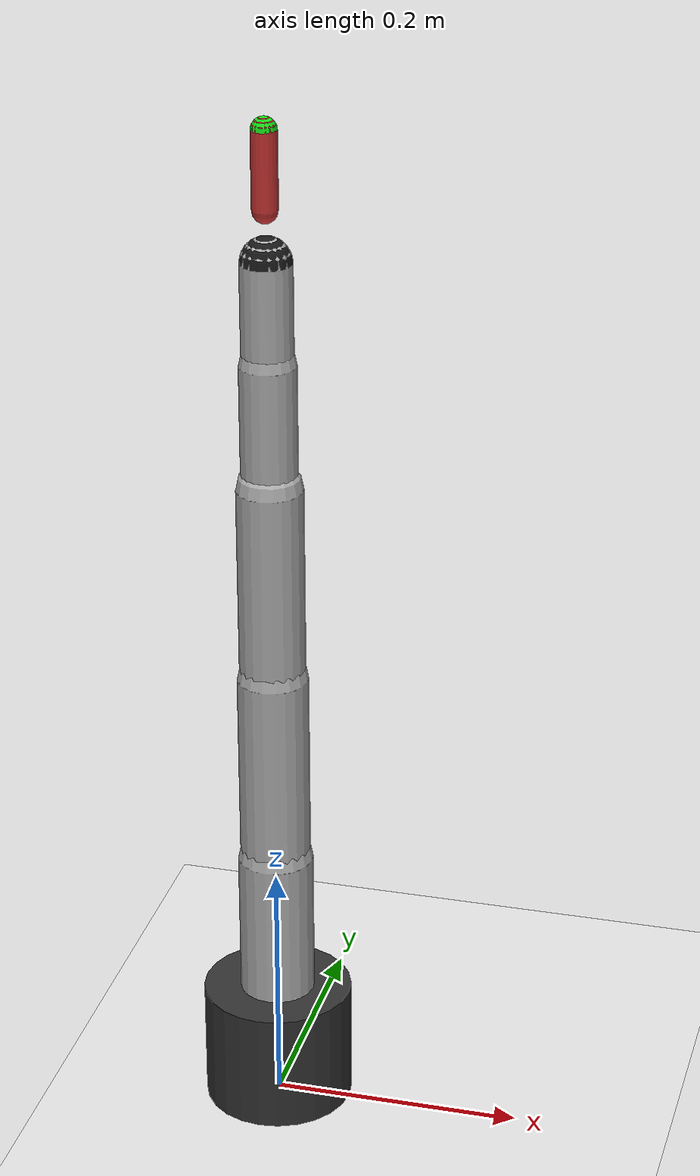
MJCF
<mujoco model="so101">
  <compiler angle="radian" coordinate="local" meshdir="" texturedir=""/>
  <option gravity="0 0 -9.81" timestep="0.002"/>

  <asset>
    <texture type="skybox" builtin="gradient" rgb1="0.9 0.9 1.0" rgb2="0.6 0.6 0.8" width="512" height="512"/>
    <material name="grey" rgba="0.7 0.7 0.7 1"/>
    <material name="black" rgba="0.2 0.2 0.2 1"/>
    <material name="red" rgba="0.8 0.2 0.2 1"/>
  </asset>

  <worldbody>
    <light pos="1 1 2" dir="-1 -1 -2" diffuse="1 1 1" specular="0.2 0.2 0.2"/>
    <geom type="plane" size="5 5 0.1" pos="0 0 0" rgba="0.9 0.9 0.9 1"/>

    <!-- Front camera -->
    <camera name="front_cam" pos="1.2 0.0 0.8" euler="0.0 0.6 3.1415"/>

    <!-- Base -->
    <body name="base" pos="0 0 0.05">
      <geom type="cylinder" size="0.06 0.05" rgba="0.2 0.2 0.2 1"/>

      <!-- Joint 1 (shoulder_pan) -->
      <body name="link1" pos="0 0 0.05">
        <joint name="shoulder_pan" type="hinge" axis="0 0 1" range="-3.14 3.14" damping="0.1"/>
        <geom type="capsule" fromto="0 0 0  0 0 0.12" size="0.03" material="grey"/>

        <!-- Joint 2 (shoulder_lift) -->
        <body name="link2" pos="0 0 0.12">
          <joint name="shoulder_lift" type="hinge" axis="0 1 0" range="-2.0 2.0" damping="0.1"/>
          <geom type="capsule" fromto="0 0 0  0 0 0.16" size="0.028" material="grey"/>

          <!-- Joint 3 (elbow_flex) -->
          <body name="link3" pos="0 0 0.16">
            <joint name="elbow_flex" type="hinge" axis="0 1 0" range="-2.0 2.0" damping="0.1"/>
            <geom type="capsule" fromto="0 0 0  0 0 0.16" size="0.026" material="grey"/>

            <!-- Joint 4 (wrist_flex) -->
            <body name="link4" pos="0 0 0.16">
              <joint name="wrist_flex" type="hinge" axis="0 1 0" range="-2.0 2.0" damping="0.05"/>
              <geom type="capsule" fromto="0 0 0  0 0 0.10" size="0.022" material="grey"/>

              <!-- Joint 5 (wrist_roll) -->
              <body name="link5" pos="0 0 0.10">
                <joint name="wrist_roll" type="hinge" axis="0 0 1" range="-3.14 3.14" damping="0.02"/>
                <geom type="capsule" fromto="0 0 0  0 0 0.08" size="0.02" material="grey"/>

                <!-- Gripper (single DOF approximation) -->
                <body name="gripper_base" pos="0 0 0.08">
                  <geom type="sphere" size="0.02" rgba="0.1 0.1 0.1 1"/>
                  <!-- A simple fixed fingertip for now -->
                  <body name="tool" pos="0 0 0.04">
                    <geom type="capsule" fromto="0 0 0  0 0 0.06" size="0.01" material="red"/>
                    <site name="ee_site" pos="0 0 0.06" size="0.01" rgba="0.1 0.9 0.1 1"/>
                  </body>
                </body>
              </body>
            </body>
          </body>
        </body>
      </body>
    </body>
  </worldbody>

  <actuator>
    <!-- Position actuators mapped to joints -->
    <position name="shoulder_pan_act" joint="shoulder_pan" kp="50" kv="5"/>
    <position name="shoulder_lift_act" joint="shoulder_lift" kp="50" kv="5"/>
    <position name="elbow_flex_act" joint="elbow_flex" kp="50" kv="5"/>
    <position name="wrist_flex_act" joint="wrist_flex" kp="40" kv="4"/>
    <position name="wrist_roll_act" joint="wrist_roll" kp="30" kv="3"/>
  </actuator>
</mujoco>
